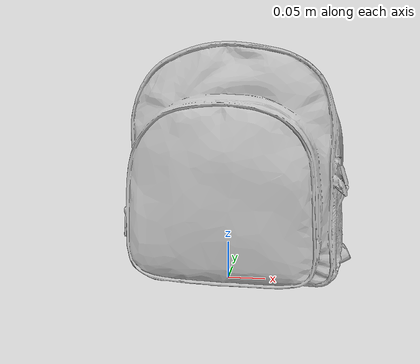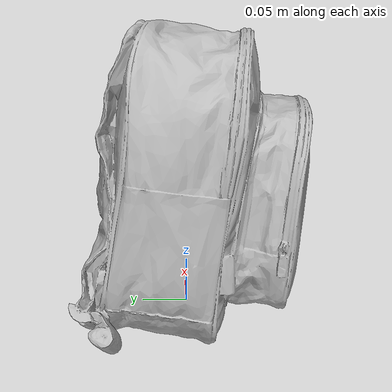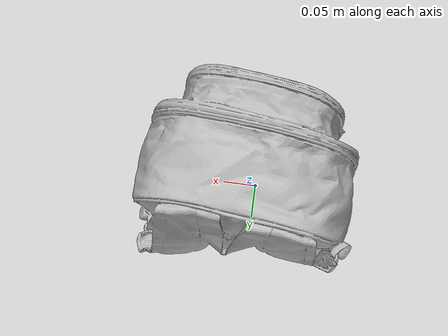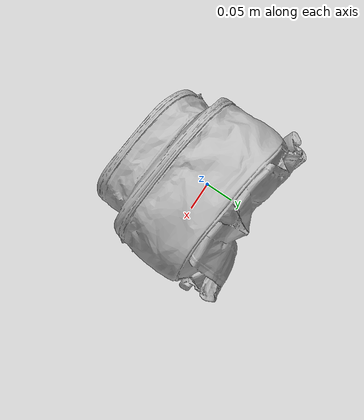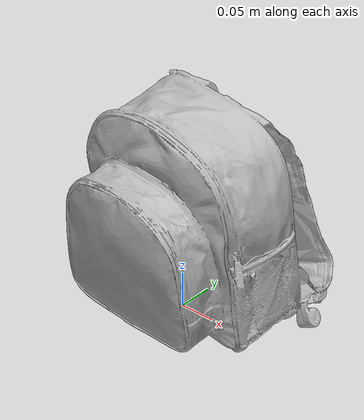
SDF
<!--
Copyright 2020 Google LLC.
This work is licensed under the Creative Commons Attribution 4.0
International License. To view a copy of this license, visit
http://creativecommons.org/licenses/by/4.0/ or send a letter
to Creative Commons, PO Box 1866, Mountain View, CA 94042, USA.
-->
<?xml version="1.0" ?>
<sdf version="1.6">
  <model name="Olive_Kids_Game_On_Pack_n_Snack">
    <link name="link_0">
      <visual name="visual">
        <geometry>
          <mesh>
            <uri>meshes/model.obj</uri>
          </mesh>
        </geometry>
      </visual>
      <collision name="collision_0">
        <geometry>
          <mesh>
            <uri>meshes/model.obj</uri>
          </mesh>
        </geometry>
      </collision>
    </link>
  </model>
</sdf>
